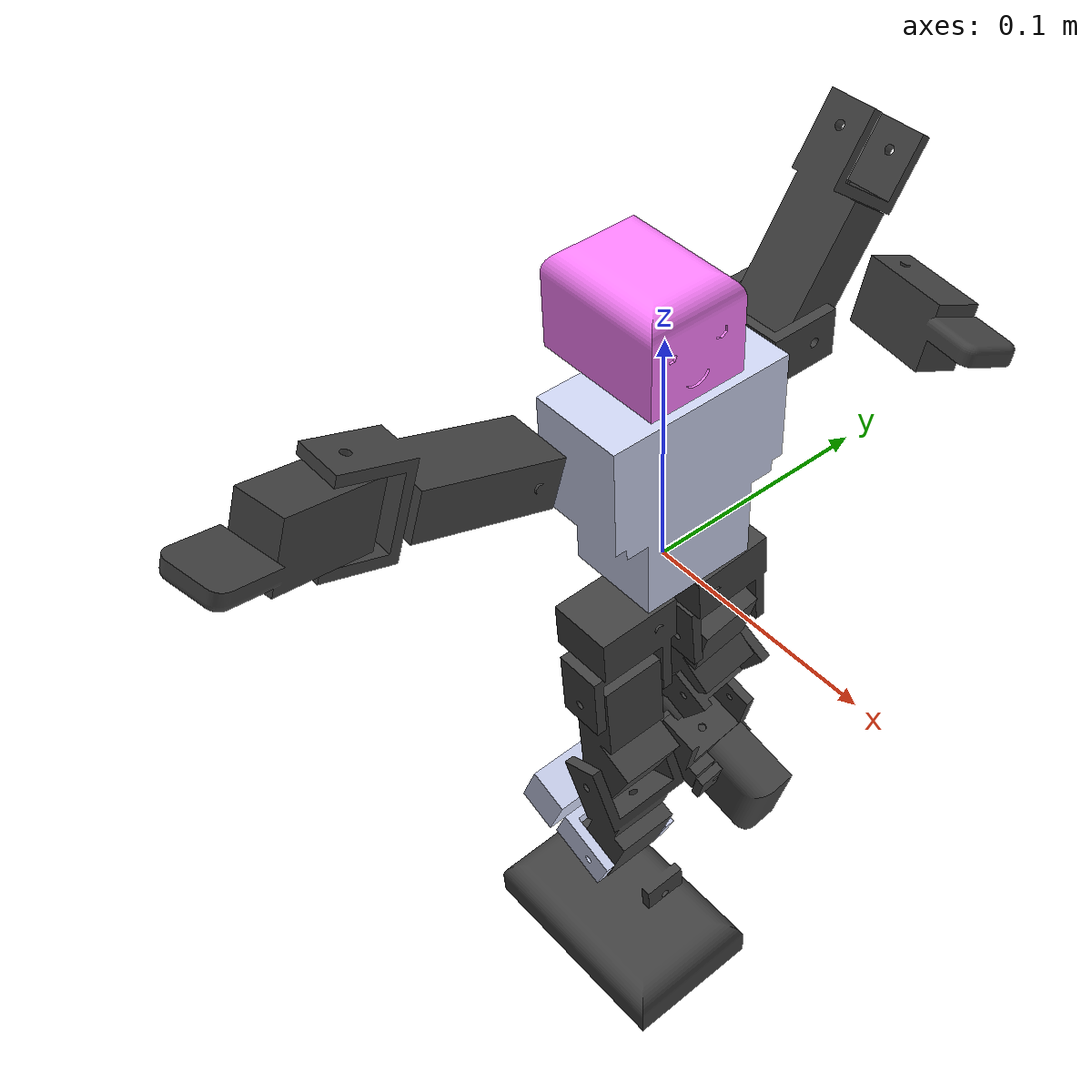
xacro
<?xml version="1.0"?>
<robot xmlns:xacro="http://www.ros.org/wiki/xacro" name="k1">
    <xacro:arg name="initial_positions_file" default="initial_positions.yaml" />

    <!-- Import k1 urdf file -->
    <xacro:include filename="$(find k1_description)/urdf/k1.xacro" />

    <!-- Import control_xacro -->
    <xacro:include filename="k1.ros2_control.xacro" />

    <xacro:k1_ros2_control name="FakeSystem" initial_positions_file="$(arg initial_positions_file)"/>

</robot>

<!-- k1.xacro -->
<robot name="k1">

  <link name="base_link">
    <inertial>
      <origin xyz="-2.74854541183482E-18 -4.61950778389125E-19 0.0470916230366492" rpy="0 0 0" />
      <mass value="0.2292" />
      <inertia ixx="0.00022678767591623" ixy="-3.7704942585474E-21" ixz="-1.16227512873892E-21" iyy="0.00015895767591623" iyz="-2.76736603223311E-21" izz="0.00012895" />
    </inertial>
    <visual>
      <origin xyz="0 0 0" rpy="0 0 0" />
      <geometry>
        <mesh filename="package://k1_description/meshes/visual/base_link.STL" />
      </geometry>
      <material name="">
        <color rgba="0.792156862745098 0.819607843137255 0.933333333333333 1" />
      </material>
    </visual>
    <collision>
      <origin xyz="0 0 0" rpy="0 0 0" />
      <geometry>
        <mesh filename="package://k1_description/meshes/collision/base_link.STL" />
      </geometry>
    </collision>
  </link>
  <link name="right_hip_link">
    <inertial>
      <origin xyz="-0.00651824599613865 2.92734586571086E-18 -0.00228432235654178" rpy="0 0 0" />
      <mass value="0.027821769923242" />
      <inertia ixx="4.43354161733857E-06" ixy="4.67010169351549E-23" ixz="4.767222976598E-08" iyy="3.78674573990841E-06" iyz="-5.11832663195711E-22" izz="5.52212734276756E-06" />
    </inertial>
    <visual>
      <origin xyz="0 0 0" rpy="0 0 0" />
      <geometry>
        <mesh filename="package://k1_description/meshes/visual/right_hip_link.STL" />
      </geometry>
      <material name="">
        <color rgba="0.250980392156863 0.250980392156863 0.250980392156863 1" />
      </material>
    </visual>
    <collision>
      <origin xyz="0 0 0" rpy="0 0 0" />
      <geometry>
        <mesh filename="package://k1_description/meshes/collision/right_hip_link.STL" />
      </geometry>
    </collision>
  </link>
  <joint name="right_hip" type="revolute">
    <origin xyz="0.0005 -0.015 -0.02" rpy="-3.1416 0 1.5708" />
    <parent link="base_link" />
    <child link="right_hip_link" />
    <axis xyz="0 1 0" />
    <limit lower="-1.5" upper="1.5" effort="0" velocity="3" />
  </joint>
  <link name="right_thigh_link">
    <inertial>
      <origin xyz="6.31352746712905E-05 -1.04083408558608E-17 0.00403162866350376" rpy="0 0 0" />
      <mass value="0.0278217699232421" />
      <inertia ixx="5.93907846618009E-06" ixy="-2.07567490117999E-22" ixz="1.05342441330196E-08" iyy="3.78674573990841E-06" iyz="4.94440913447292E-22" izz="4.01659049392605E-06" />
    </inertial>
    <visual>
      <origin xyz="0 0 0" rpy="0 0 0" />
      <geometry>
        <mesh filename="package://k1_description/meshes/visual/right_thigh_link.STL" />
      </geometry>
      <material name="">
        <color rgba="0.250980392156863 0.250980392156863 0.250980392156863 1" />
      </material>
    </visual>
    <collision>
      <origin xyz="0 0 0" rpy="0 0 0" />
      <geometry>
        <mesh filename="package://k1_description/meshes/collision/right_thigh_link.STL" />
      </geometry>
    </collision>
  </link>
  <joint name="right_thigh" type="revolute">
    <origin xyz="-0.0094505 0.0005 0.033316" rpy="0.031659 0.025339 1.5716" />
    <parent link="right_hip_link" />
    <child link="right_thigh_link" />
    <axis xyz="0 1 0" />
    <limit lower="-3" upper="3" effort="0" velocity="3" />
  </joint>
  <link name="right_knee_link">
    <inertial>
      <origin xyz="-0.000135799465695009 1.04083408558608E-17 -0.00634963453755198" rpy="0 0 0" />
      <mass value="0.0315177699232421" />
      <inertia ixx="6.03248087268701E-06" ixy="-5.67084596461784E-22" ixz="2.17227530672295E-07" iyy="3.91569507324175E-06" iyz="2.21803588059263E-22" izz="4.53508142075247E-06" />
    </inertial>
    <visual>
      <origin xyz="0 0 0" rpy="0 0 0" />
      <geometry>
        <mesh filename="package://k1_description/meshes/visual/right_knee_link.STL" />
      </geometry>
      <material name="">
        <color rgba="0.250980392156863 0.250980392156863 0.250980392156863 1" />
      </material>
    </visual>
    <collision>
      <origin xyz="0 0 0" rpy="0 0 0" />
      <geometry>
        <mesh filename="package://k1_description/meshes/collision/right_knee_link.STL" />
      </geometry>
    </collision>
  </link>
  <joint name="right_knee" type="revolute">
    <origin xyz="-0.0021501 0 0.055492" rpy="0 0.49935 -3.1416" />
    <parent link="right_thigh_link" />
    <child link="right_knee_link" />
    <axis xyz="0 1 0" />
    <limit lower="-3" upper="3" effort="0" velocity="3" />
  </joint>
  <link name="right_calf_link">
    <inertial>
      <origin xyz="-0.000387072019440708 0 0.0083418498895714" rpy="0 0 0" />
      <mass value="0.032371769923242" />
      <inertia ixx="6.27933649382619E-06" ixy="1.2046713659036E-21" ixz="-1.02631006855728E-07" iyy="3.93488969546397E-06" iyz="3.11525357236097E-22" izz="4.41900975516884E-06" />
    </inertial>
    <visual>
      <origin xyz="0 0 0" rpy="0 0 0" />
      <geometry>
        <mesh filename="package://k1_description/meshes/visual/right_calf_link.STL" />
      </geometry>
      <material name="">
        <color rgba="0.792156862745098 0.819607843137255 0.933333333333333 1" />
      </material>
    </visual>
    <collision>
      <origin xyz="0 0 0" rpy="0 0 0" />
      <geometry>
        <mesh filename="package://k1_description/meshes/collision/right_calf_link.STL" />
      </geometry>
    </collision>
  </link>
  <joint name="right_calf" type="revolute">
    <origin xyz="-0.023084 0 0.051939" rpy="3.1416 -0.11317 0" />
    <parent link="right_knee_link" />
    <child link="right_calf_link" />
    <axis xyz="0 1 0" />
    <limit lower="-3" upper="3" effort="0" velocity="3" />
  </joint>
  <link name="right_ankle_link">
    <inertial>
      <origin xyz="-0.012895367887895 0.00398487631475268 0.0116977656940815" rpy="0 0 0" />
      <mass value="0.152373296152955" />
      <inertia ixx="0.000107106171742906" ixy="-2.67854466622824E-10" ixz="4.02982212640107E-07" iyy="4.5135980483168E-05" iyz="1.35813174315468E-10" izz="0.000140258354090534" />
    </inertial>
    <visual>
      <origin xyz="0 0 0" rpy="0 0 0" />
      <geometry>
        <mesh filename="package://k1_description/meshes/visual/right_ankle_link.STL" />
      </geometry>
      <material name="">
        <color rgba="0.250980392156863 0.250980392156863 0.250980392156863 1" />
      </material>
    </visual>
    <collision>
      <origin xyz="0 0 0" rpy="0 0 0" />
      <geometry>
        <mesh filename="package://k1_description/meshes/collision/right_ankle_link.STL" />
      </geometry>
    </collision>
  </link>
  <joint name="right_ankle" type="revolute">
    <origin xyz="-0.012051 -0.0075 -0.030737" rpy="2.7982 0 -1.5708" />
    <parent link="right_calf_link" />
    <child link="right_ankle_link" />
    <axis xyz="0 1 0" />
    <limit lower="-3" upper="3" effort="0" velocity="3" />
  </joint>
  <link name="left_hip_link">
    <inertial>
      <origin xyz="-0.00245265378337689 1.30104260698261E-18 -0.00695509378336099" rpy="0 0 0" />
      <mass value="0.027821769923242" />
      <inertia ixx="5.53623440177927E-06" ixy="-6.75016664722994E-22" ixz="-7.12623027855017E-08" iyy="3.78674573990841E-06" iyz="1.56369646485007E-22" izz="4.41943455832686E-06" />
    </inertial>
    <visual>
      <origin xyz="0 0 0" rpy="0 0 0" />
      <geometry>
        <mesh filename="package://k1_description/meshes/visual/left_hip_link.STL" />
      </geometry>
      <material name="">
        <color rgba="0.250980392156863 0.250980392156863 0.250980392156863 1" />
      </material>
    </visual>
    <collision>
      <origin xyz="0 0 0" rpy="0 0 0" />
      <geometry>
        <mesh filename="package://k1_description/meshes/collision/left_hip_link.STL" />
      </geometry>
    </collision>
  </link>
  <joint name="left_hip" type="revolute">
    <origin xyz="0.0005 0.015 -0.02" rpy="3.1416 1.3958 1.5708" />
    <parent link="base_link" />
    <child link="left_hip_link" />
    <axis xyz="0 1 0" />
    <limit lower="-3" upper="3" effort="0" velocity="3" />
  </joint>
  <link name="left_thigh_link">
    <inertial>
      <origin xyz="-0.000293046937027548 6.93889390390723E-18 -0.00404812796646236" rpy="0 0 0" />
      <mass value="0.0278217699232421" />
      <inertia ixx="5.93359082667115E-06" ixy="1.4430802527091E-22" ixz="4.85714473787366E-08" iyy="3.78674573990841E-06" iyz="1.27893144976878E-21" izz="4.02207813343499E-06" />
    </inertial>
    <visual>
      <origin xyz="0 0 0" rpy="0 0 0" />
      <geometry>
        <mesh filename="package://k1_description/meshes/visual/left_thigh_link.STL" />
      </geometry>
      <material name="">
        <color rgba="0.250980392156863 0.250980392156863 0.250980392156863 1" />
      </material>
    </visual>
    <collision>
      <origin xyz="0 0 0" rpy="0 0 0" />
      <geometry>
        <mesh filename="package://k1_description/meshes/collision/left_thigh_link.STL" />
      </geometry>
    </collision>
  </link>
  <joint name="left_thigh" type="revolute">
    <origin xyz="0.03 0.000500000000000008 -0.00899999999999999" rpy="-1.5707963267949 0 1.4528659227743" />
    <parent link="left_hip_link" />
    <child link="left_thigh_link" />
    <axis xyz="0 1 0" />
    <limit lower="-3" upper="3" effort="0" velocity="3" />
  </joint>
  <link name="left_knee_link">
    <inertial>
      <origin xyz="-4.89852228429261E-05 -1.76941794549634E-16 0.00624714520731363" rpy="0 0 0" />
      <mass value="0.031517769923242" />
      <inertia ixx="6.0575195240443E-06" ixy="-4.30509763183972E-22" ixz="-2.21402757576364E-07" iyy="3.91569507324175E-06" iyz="-6.18830948968168E-22" izz="4.51004276939517E-06" />
    </inertial>
    <visual>
      <origin xyz="0 0 0" rpy="0 0 0" />
      <geometry>
        <mesh filename="package://k1_description/meshes/visual/left_knee_link.STL" />
      </geometry>
      <material name="">
        <color rgba="0.250980392156863 0.250980392156863 0.250980392156863 1" />
      </material>
    </visual>
    <collision>
      <origin xyz="0 0 0" rpy="0 0 0" />
      <geometry>
        <mesh filename="package://k1_description/meshes/collision/left_knee_link.STL" />
      </geometry>
    </collision>
  </link>
  <joint name="left_knee" type="revolute">
    <origin xyz="-0.00215005179923169 0 -0.0554917017754941" rpy="0 -0.499346721680133 3.14159265358979" />
    <parent link="left_thigh_link" />
    <child link="left_knee_link" />
    <axis xyz="0 1 0" />
    <limit lower="-3" upper="3" effort="0" velocity="3" />
  </joint>
  <link name="left_calf_link">
    <inertial>
      <origin xyz="-0.000168198425069349 -1.45716771982052E-16 -0.00827653769580036" rpy="0 0 0" />
      <mass value="0.0323717699232421" />
      <inertia ixx="6.3036101539097E-06" ixy="2.11807547460393E-22" ixz="6.55798264311812E-08" iyy="3.93488969546398E-06" iyz="-1.59430620853435E-21" izz="4.39473609508533E-06" />
    </inertial>
    <visual>
      <origin xyz="0 0 0" rpy="0 0 0" />
      <geometry>
        <mesh filename="package://k1_description/meshes/visual/left_calf_link.STL" />
      </geometry>
      <material name="">
        <color rgba="0.250980392156863 0.250980392156863 0.250980392156863 1" />
      </material>
    </visual>
    <collision>
      <origin xyz="0 0 0" rpy="0 0 0" />
      <geometry>
        <mesh filename="package://k1_description/meshes/collision/left_calf_link.STL" />
      </geometry>
    </collision>
  </link>
  <joint name="left_calf" type="revolute">
    <origin xyz="-0.0198692740011601 0 -0.0532513355105156" rpy="-3.14159265358979 0.0520650640700285 0" />
    <parent link="left_knee_link" />
    <child link="left_calf_link" />
    <axis xyz="0 1 0" />
    <limit lower="-3" upper="3" effort="0" velocity="3" />
  </joint>
  <link name="left_ankle_link">
    <inertial>
      <origin xyz="-0.0118168931644879 -0.00398488608298372 -0.0127751448550284" rpy="0 0 0" />
      <mass value="0.152373247707281" />
      <inertia ixx="0.000140255620895985" ixy="-5.26733657775849E-10" ixz="-7.25991197394405E-07" iyy="4.51378245971644E-05" iyz="-7.24960113436985E-11" izz="0.000107122876890634" />
    </inertial>
    <visual>
      <origin xyz="0 0 0" rpy="0 0 0" />
      <geometry>
        <mesh filename="package://k1_description/meshes/visual/left_ankle_link.STL" />
      </geometry>
      <material name="">
        <color rgba="0.250980392156863 0.250980392156863 0.250980392156863 1" />
      </material>
    </visual>
    <collision>
      <origin xyz="0 0 0" rpy="0 0 0" />
      <geometry>
        <mesh filename="package://k1_description/meshes/collision/left_ankle_link.STL" />
      </geometry>
    </collision>
  </link>
  <joint name="left_ankle" type="revolute">
    <origin xyz="-0.00870769361648834 -0.0074999999999989 0.0318461311917393" rpy="1.57079632679489 1.33418390311996 0" />
    <parent link="left_calf_link" />
    <child link="left_ankle_link" />
    <axis xyz="0 1 0" />
    <limit lower="-3" upper="3" effort="0" velocity="3" />
  </joint>
  <link name="right_arm_link">
    <inertial>
      <origin xyz="6.93889390390723E-17 -0.00711626473085393 -0.00652151176940128" rpy="0 0 0" />
      <mass value="0.027821769923242" />
      <inertia ixx="5.93916106248708E-06" ixy="-3.23486617911071E-22" ixz="-1.66478749847302E-08" iyy="4.87325547682611E-06" iyz="-5.55023094980973E-22" izz="2.92999816070136E-06" />
    </inertial>
    <visual>
      <origin xyz="0 0 0" rpy="0 0 0" />
      <geometry>
        <mesh filename="package://k1_description/meshes/visual/right_arm_link.STL" />
      </geometry>
      <material name="">
        <color rgba="0.250980392156863 0.250980392156863 0.250980392156863 1" />
      </material>
    </visual>
    <collision>
      <origin xyz="0 0 0" rpy="0 0 0" />
      <geometry>
        <mesh filename="package://k1_description/meshes/collision/right_arm_link.STL" />
      </geometry>
    </collision>
  </link>
  <joint name="right_shoulder" type="revolute">
    <origin xyz="-0.007 -0.026 0.075" rpy="0 -1.5708 0" />
    <parent link="base_link" />
    <child link="right_arm_link" />
    <axis xyz="0 1 0" />
    <limit lower="-3" upper="3" effort="0" velocity="3" />
  </joint>
  <link name="right_arm_upper">
    <inertial>
      <origin xyz="-2.56739074444567E-16 -4.77048955893622E-16 -0.027997650371616" rpy="0 0 0" />
      <mass value="0.0404127433991118" />
      <inertia ixx="5.83338324794275E-06" ixy="9.26442286059391E-23" ixz="6.64109709606441E-22" iyy="6.27306084712394E-06" iyz="-4.91345283856498E-22" izz="5.2865719936405E-06" />
    </inertial>
    <visual>
      <origin xyz="0 0 0" rpy="0 0 0" />
      <geometry>
        <mesh filename="package://k1_description/meshes/visual/right_arm_upper.STL" />
      </geometry>
      <material name="">
        <color rgba="0.250980392156863 0.250980392156863 0.250980392156863 1" />
      </material>
    </visual>
    <collision>
      <origin xyz="0 0 0" rpy="0 0 0" />
      <geometry>
        <mesh filename="package://k1_description/meshes/collision/right_arm_upper.STL" />
      </geometry>
    </collision>
  </link>
  <joint name="right_upper" type="revolute">
    <origin xyz="0 -0.0350000000000004 0" rpy="-1.56717278184304 0.010474038342865 0.333073638779225" />
    <parent link="right_arm_link" />
    <child link="right_arm_upper" />
    <axis xyz="0 1 0" />
    <limit lower="-3" upper="3" effort="0" velocity="3" />
  </joint>
  <link name="right_arm_lower">
    <inertial>
      <origin xyz="3.33066907387547E-16 0.000840716498841119 -0.018261633701405" rpy="0 0 0" />
      <mass value="0.0290848600660391" />
      <inertia ixx="4.64311633086366E-06" ixy="3.30872245021211E-23" ixz="-1.58818677610181E-21" iyy="4.0538898836655E-06" iyz="1.67669592897643E-07" izz="2.72498939319332E-06" />
    </inertial>
    <visual>
      <origin xyz="0 0 0" rpy="0 0 0" />
      <geometry>
        <mesh filename="package://k1_description/meshes/visual/right_arm_lower.STL" />
      </geometry>
      <material name="">
        <color rgba="0.250980392156863 0.250980392156863 0.250980392156863 1" />
      </material>
    </visual>
    <collision>
      <origin xyz="0 0 0" rpy="0 0 0" />
      <geometry>
        <mesh filename="package://k1_description/meshes/collision/right_arm_lower.STL" />
      </geometry>
    </collision>
  </link>
  <joint name="right_arm_lower" type="revolute">
    <origin xyz="0 0 -0.0700000000000015" rpy="0 -0.211216901794467 1.5707963267949" />
    <parent link="right_arm_upper" />
    <child link="right_arm_lower" />
    <axis xyz="0 1 0" />
    <limit lower="-3" upper="3" effort="0" velocity="3" />
  </joint>
  <link name="left_arm_link">
    <inertial>
      <origin xyz="2.77555756156289E-17 -0.00711626473085391 -0.00652151176940128" rpy="0 0 0" />
      <mass value="0.027821769923242" />
      <inertia ixx="5.93916106248708E-06" ixy="2.78909531082714E-22" ixz="-1.66478749847319E-08" iyy="4.87325547682611E-06" iyz="-8.24052933510266E-22" izz="2.92999816070136E-06" />
    </inertial>
    <visual>
      <origin xyz="0 0 0" rpy="0 0 0" />
      <geometry>
        <mesh filename="package://k1_description/meshes/visual/left_arm_link.STL" />
      </geometry>
      <material name="">
        <color rgba="0.250980392156863 0.250980392156863 0.250980392156863 1" />
      </material>
    </visual>
    <collision>
      <origin xyz="0 0 0" rpy="0 0 0" />
      <geometry>
        <mesh filename="package://k1_description/meshes/collision/left_arm_link.STL" />
      </geometry>
    </collision>
  </link>
  <joint name="left_shoulder" type="revolute">
    <origin xyz="-0.007 0.026 0.075" rpy="3.1416 1.5708 0" />
    <parent link="base_link" />
    <child link="left_arm_link" />
    <axis xyz="0 1 0" />
    <limit lower="-3" upper="3" effort="0" velocity="3" />
  </joint>
  <link name="left_arm_upper_link">
    <inertial>
      <origin xyz="-2.63677968348475E-16 -4.83120488059541E-16 -0.0279976503716161" rpy="0 0 0" />
      <mass value="0.0404127433991118" />
      <inertia ixx="5.83338324794275E-06" ixy="-5.69100261436483E-22" ixz="2.12034825330898E-21" iyy="6.27306084712394E-06" iyz="3.04402465419514E-22" izz="5.28657199364051E-06" />
    </inertial>
    <visual>
      <origin xyz="0 0 0" rpy="0 0 0" />
      <geometry>
        <mesh filename="package://k1_description/meshes/visual/left_arm_upper_link.STL" />
      </geometry>
      <material name="">
        <color rgba="0.250980392156863 0.250980392156863 0.250980392156863 1" />
      </material>
    </visual>
    <collision>
      <origin xyz="0 0 0" rpy="0 0 0" />
      <geometry>
        <mesh filename="package://k1_description/meshes/collision/left_arm_upper_link.STL" />
      </geometry>
    </collision>
  </link>
  <joint name="left_arm_upper" type="revolute">
    <origin xyz="0 -0.0350000000000004 0" rpy="-1.56717278184304 0.0104740383428658 0.333073638779224" />
    <parent link="left_arm_link" />
    <child link="left_arm_upper_link" />
    <axis xyz="0 1 0" />
    <limit lower="-3" upper="3" effort="0" velocity="3" />
  </joint>
  <link name="left_arm_lower_link">
    <inertial>
      <origin xyz="3.2612801348364E-16 0.000840716498841126 -0.018261633701405" rpy="0 0 0" />
      <mass value="0.0290848600660392" />
      <inertia ixx="4.64311633086367E-06" ixy="5.62482816536059E-22" ixz="-2.11758236813575E-21" iyy="4.0538898836655E-06" iyz="1.67669592897643E-07" izz="2.72498939319332E-06" />
    </inertial>
    <visual>
      <origin xyz="0 0 0" rpy="0 0 0" />
      <geometry>
        <mesh filename="package://k1_description/meshes/visual/left_arm_lower_link.STL" />
      </geometry>
      <material name="">
        <color rgba="0.250980392156863 0.250980392156863 0.250980392156863 1" />
      </material>
    </visual>
    <collision>
      <origin xyz="0 0 0" rpy="0 0 0" />
      <geometry>
        <mesh filename="package://k1_description/meshes/collision/left_arm_lower_link.STL" />
      </geometry>
    </collision>
  </link>
  <joint name="left_arm_lower" type="revolute">
    <origin xyz="0 0 -0.0700000000000015" rpy="0 -0.211216901794467 1.5707963267949" />
    <parent link="left_arm_upper_link" />
    <child link="left_arm_lower_link" />
    <axis xyz="0 1 0" />
    <limit lower="-3" upper="3" effort="0" velocity="3" />
  </joint>
  <link name="head_link">
    <inertial>
      <origin xyz="-5.27015314794539E-07 -0.0192636340735728 1.77662602571516E-05" rpy="0 0 0" />
      <mass value="0.0901518210219852" />
      <inertia ixx="3.42226307311124E-05" ixy="-4.6238061519061E-10" ixz="-1.35489424526232E-09" iyy="3.57923710083382E-05" iyz="-6.15798115932358E-09" izz="2.41005619280376E-05" />
    </inertial>
    <visual>
      <origin xyz="0 0 0" rpy="0 0 0" />
      <geometry>
        <mesh filename="package://k1_description/meshes/visual/head_link.STL" />
      </geometry>
      <material name="">
        <color rgba="1 0.501960784313725 1 1" />
      </material>
    </visual>
    <collision>
      <origin xyz="0 0 0" rpy="0 0 0" />
      <geometry>
        <mesh filename="package://k1_description/meshes/collision/head_link.STL" />
      </geometry>
    </collision>
  </link>
  <joint name="head" type="revolute">
    <origin xyz="-0.011 0 0.086" rpy="-1.5707963267949 0 1.5707963267949" />
    <parent link="base_link" />
    <child link="head_link" />
    <axis xyz="0 -1 0" />
    <limit lower="-3" upper="3" effort="0" velocity="3" />
  </joint>
</robot>
